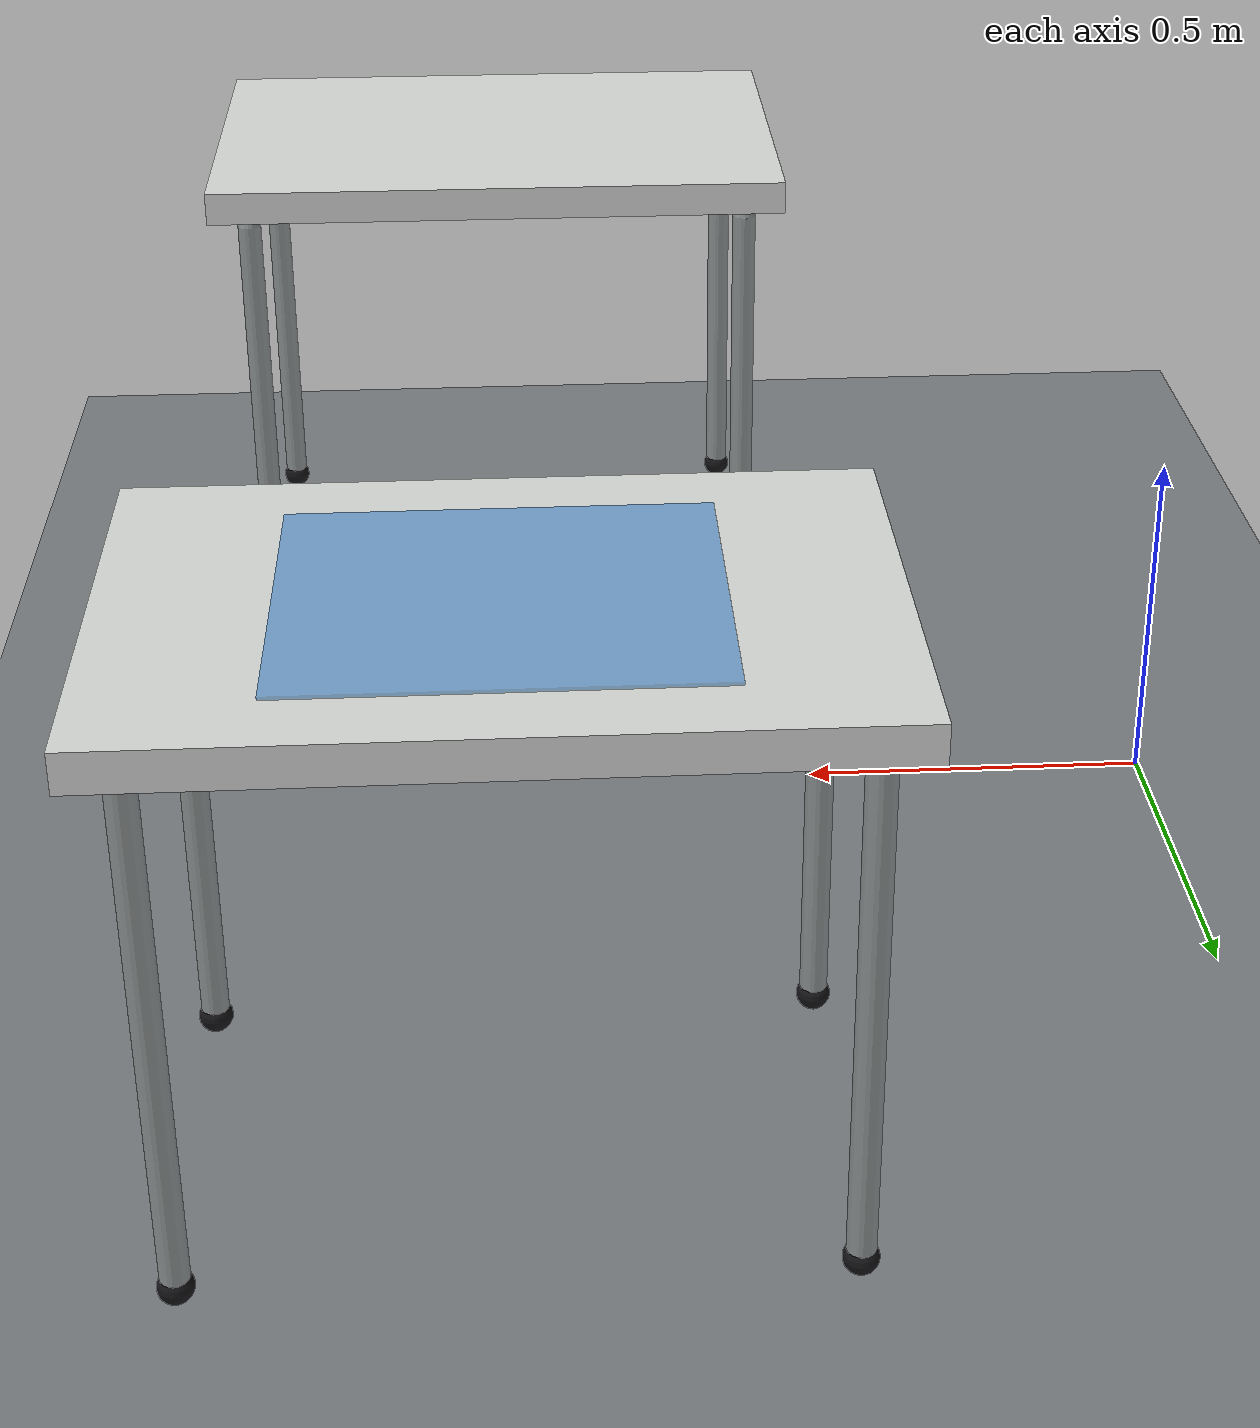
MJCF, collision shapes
<mujoco model="carry_tables">
  <asset>
    <material name="floor_lab" rgba="0.46 0.48 0.49 1" reflectance="0.10"/>
    <texture name="folding_table_color" type="2d"
      file="../../textures/folding_table_basecolor.png"/>
    <material name="folding_table_visual" texture="folding_table_color"
      specular="0.12" shininess="0.18"/>
    <material name="table_white" rgba="0.84 0.85 0.84 0"/>
    <material name="table_frame" rgba="0.58 0.60 0.60 0"/>
    <material name="table_foot" rgba="0.08 0.08 0.09 0"/>
    <material name="target_blue" rgba="0.06 0.42 0.78 0.48"/>
    <mesh name="folding_table_mesh" file="../../../meshes/folding_table.obj"/>
  </asset>

  <default>
    <default class="carry_table">
      <geom density="0" friction="0.82 0.01 0.001"
        solref="0.015 1" solimp="0.9 0.95 0.002"/>
    </default>
    <default class="carry_brace">
      <geom type="capsule" size="0.008" density="0" material="table_frame"
        contype="0" conaffinity="0"/>
    </default>
  </default>

  <worldbody>
    <light pos="0.3 -0.8 2.6" dir="0.1 0.2 -1" directional="true"
      diffuse="0.88 0.86 0.83"/>
    <light pos="1.2 1.2 1.9" dir="-0.2 -0.3 -1" directional="true"
      diffuse="0.42 0.43 0.46"/>
    <geom name="floor" size="0 0 0.05" type="plane" material="floor_lab"
      friction="1.0 0.01 0.001"/>

    <!-- Identical free bodies: hard impacts can move or tip either table. -->
    <body name="source_table" pos="0.95 -0.82 0">
      <freejoint name="source_table_joint"/>
      <inertial pos="0 0 0.43" mass="13.0"
        diaginertia="1.35 0.92 1.62"/>
      <geom name="source_table_visual" type="mesh" mesh="folding_table_mesh"
        material="folding_table_visual" density="0"
        contype="0" conaffinity="0"/>
      <geom name="source_table_top" class="carry_table" type="box"
        pos="0 0 0.735" size="0.45 0.30 0.025" material="table_white"/>
      <geom class="carry_table" type="box" pos="0 0 0.695"
        size="0.43 0.025 0.025" material="table_frame"/>
      <geom name="source_leg_fl" class="carry_table" type="capsule"
        fromto="-0.39 0.25 0.69 -0.39 0.25 0.035" size="0.018"
        material="table_frame"/>
      <geom name="source_leg_fr" class="carry_table" type="capsule"
        fromto="-0.39 -0.25 0.69 -0.39 -0.25 0.035" size="0.018"
        material="table_frame"/>
      <geom name="source_leg_rl" class="carry_table" type="capsule"
        fromto="0.39 0.25 0.69 0.39 0.25 0.035" size="0.018"
        material="table_frame"/>
      <geom name="source_leg_rr" class="carry_table" type="capsule"
        fromto="0.39 -0.25 0.69 0.39 -0.25 0.035" size="0.018"
        material="table_frame"/>
      <geom class="carry_brace" fromto="-0.38 0.25 0.55 0.20 0.25 0.10"/>
      <geom class="carry_brace" fromto="0.38 0.25 0.55 -0.20 0.25 0.10"/>
      <geom class="carry_brace" fromto="-0.38 -0.25 0.55 0.20 -0.25 0.10"/>
      <geom class="carry_brace" fromto="0.38 -0.25 0.55 -0.20 -0.25 0.10"/>
      <geom name="source_foot_fl" class="carry_table" type="sphere"
        pos="-0.39 0.25 0.022" size="0.022" material="table_foot"
        friction="1.20 0.015 0.002"/>
      <geom name="source_foot_fr" class="carry_table" type="sphere"
        pos="-0.39 -0.25 0.022" size="0.022" material="table_foot"
        friction="1.20 0.015 0.002"/>
      <geom name="source_foot_rl" class="carry_table" type="sphere"
        pos="0.39 0.25 0.022" size="0.022" material="table_foot"
        friction="1.20 0.015 0.002"/>
      <geom name="source_foot_rr" class="carry_table" type="sphere"
        pos="0.39 -0.25 0.022" size="0.022" material="table_foot"
        friction="1.20 0.015 0.002"/>
    </body>

    <body name="target_table" pos="0.95 0.82 0">
      <freejoint name="target_table_joint"/>
      <inertial pos="0 0 0.43" mass="13.0"
        diaginertia="1.35 0.92 1.62"/>
      <geom name="target_table_visual" type="mesh" mesh="folding_table_mesh"
        material="folding_table_visual" density="0"
        contype="0" conaffinity="0"/>
      <geom name="target_table_top" class="carry_table" type="box"
        pos="0 0 0.735" size="0.45 0.30 0.025" material="table_white"/>
      <geom class="carry_table" type="box" pos="0 0 0.695"
        size="0.43 0.025 0.025" material="table_frame"/>
      <geom name="target_leg_fl" class="carry_table" type="capsule"
        fromto="-0.39 0.25 0.69 -0.39 0.25 0.035" size="0.018"
        material="table_frame"/>
      <geom name="target_leg_fr" class="carry_table" type="capsule"
        fromto="-0.39 -0.25 0.69 -0.39 -0.25 0.035" size="0.018"
        material="table_frame"/>
      <geom name="target_leg_rl" class="carry_table" type="capsule"
        fromto="0.39 0.25 0.69 0.39 0.25 0.035" size="0.018"
        material="table_frame"/>
      <geom name="target_leg_rr" class="carry_table" type="capsule"
        fromto="0.39 -0.25 0.69 0.39 -0.25 0.035" size="0.018"
        material="table_frame"/>
      <geom class="carry_brace" fromto="-0.38 0.25 0.55 0.20 0.25 0.10"/>
      <geom class="carry_brace" fromto="0.38 0.25 0.55 -0.20 0.25 0.10"/>
      <geom class="carry_brace" fromto="-0.38 -0.25 0.55 0.20 -0.25 0.10"/>
      <geom class="carry_brace" fromto="0.38 -0.25 0.55 -0.20 -0.25 0.10"/>
      <geom name="target_foot_fl" class="carry_table" type="sphere"
        pos="-0.39 0.25 0.022" size="0.022" material="table_foot"
        friction="1.20 0.015 0.002"/>
      <geom name="target_foot_fr" class="carry_table" type="sphere"
        pos="-0.39 -0.25 0.022" size="0.022" material="table_foot"
        friction="1.20 0.015 0.002"/>
      <geom name="target_foot_rl" class="carry_table" type="sphere"
        pos="0.39 0.25 0.022" size="0.022" material="table_foot"
        friction="1.20 0.015 0.002"/>
      <geom name="target_foot_rr" class="carry_table" type="sphere"
        pos="0.39 -0.25 0.022" size="0.022" material="table_foot"
        friction="1.20 0.015 0.002"/>
      <geom name="carry_target" type="box" pos="0 0 0.762"
        size="0.25 0.21 0.002" material="target_blue"
        contype="0" conaffinity="0" density="0"/>
    </body>
  </worldbody>
</mujoco>
